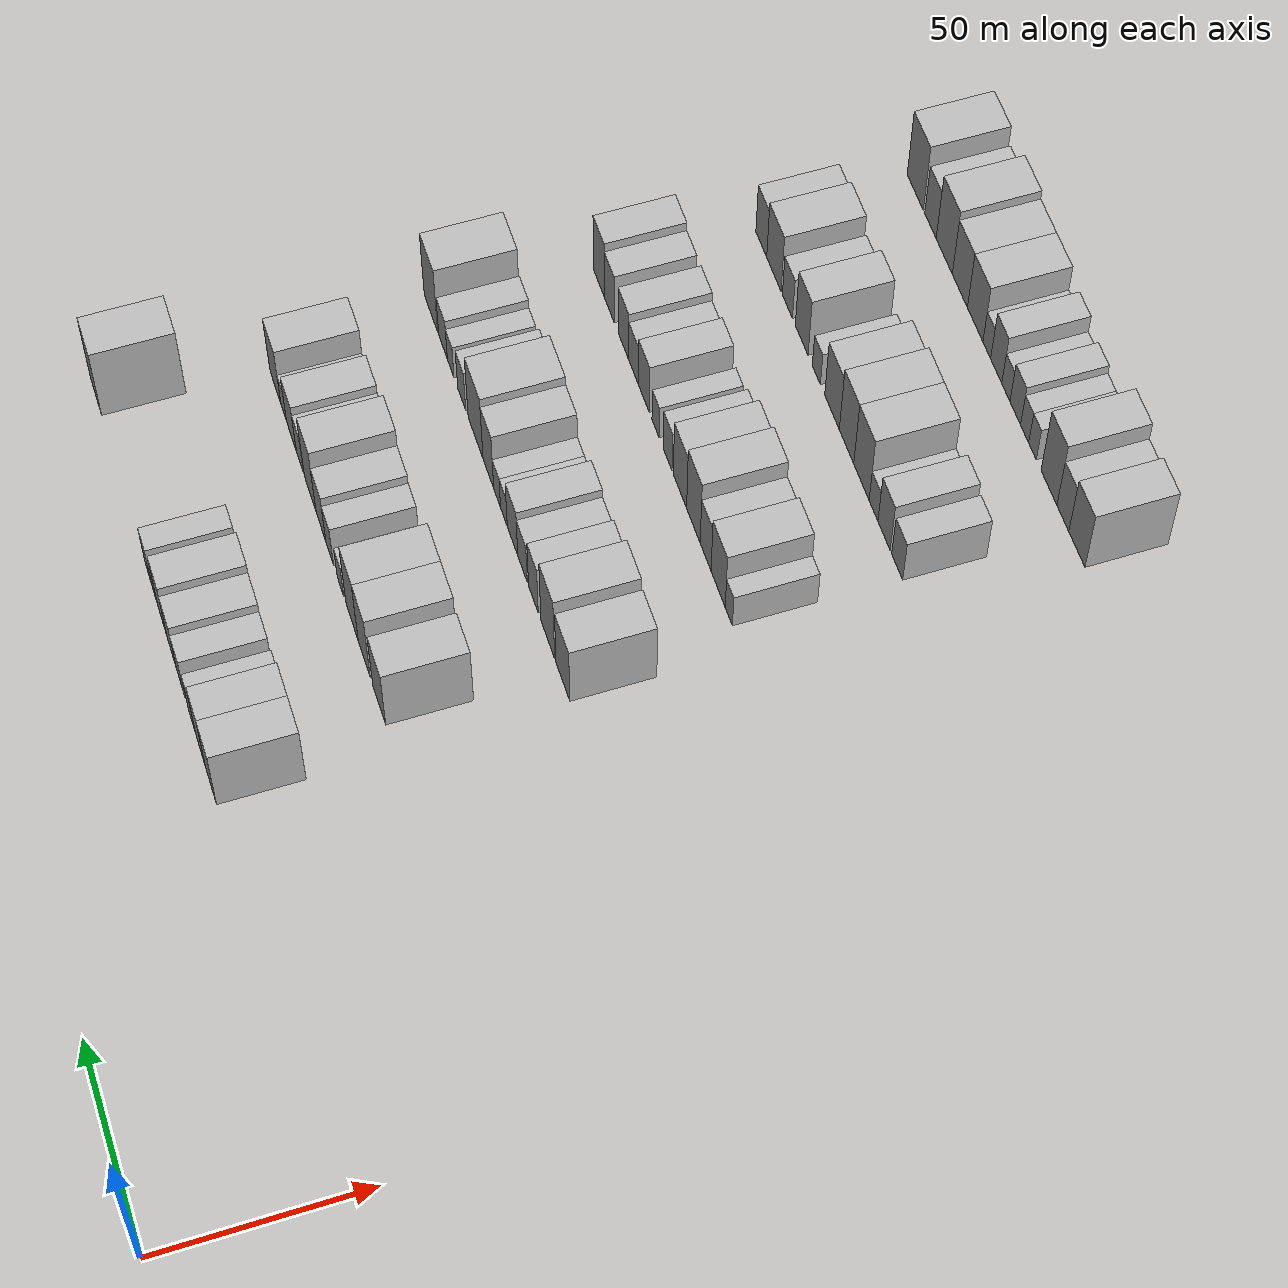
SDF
<sdf version="1.6">
 <world name="default">
  <model name="building_77">
   <static>1</static>
   <pose>50.0000 99.2891 0 0.000000 0.000000 0.000000</pose>
   <link name="link">
    <pose>0 0 10.50 0 0 0</pose>
    <collision name="collision"><geometry><box><size>20.0000 9.4517 21.0000</size></box></geometry></collision>
    <visual name="visual">
     <cast_shadows>0</cast_shadows>
     <geometry><box><size>20.0000 9.4517 21.0000</size></box></geometry>
     <material>
      <script>
       <uri>model://HANNAS_wall/materials/scripts</uri>
       <uri>model://HANNAS_wall/materials/textures</uri>
       <name>vrc/HANNAS_wall</name>
      </script>
     </material>
    </visual>
   </link>
  </model>
  <model name="building_78">
   <static>1</static>
   <pose>50.0000 108.2831 0 0.000000 0.000000 0.000000</pose>
   <link name="link">
    <pose>0 0 10.50 0 0 0</pose>
    <collision name="collision"><geometry><box><size>20.0000 8.5363 21.0000</size></box></geometry></collision>
    <visual name="visual">
     <cast_shadows>0</cast_shadows>
     <geometry><box><size>20.0000 8.5363 21.0000</size></box></geometry>
     <material>
      <script>
       <uri>model://HANNAS_wall/materials/scripts</uri>
       <uri>model://HANNAS_wall/materials/textures</uri>
       <name>vrc/HANNAS_wall</name>
      </script>
     </material>
    </visual>
   </link>
  </model>
  <model name="building_79">
   <static>1</static>
   <pose>50.0000 115.9883 0 0.000000 0.000000 0.000000</pose>
   <link name="link">
    <pose>0 0 7.50 0 0 0</pose>
    <collision name="collision"><geometry><box><size>20.0000 6.8740 15.0000</size></box></geometry></collision>
    <visual name="visual">
     <cast_shadows>0</cast_shadows>
     <geometry><box><size>20.0000 6.8740 15.0000</size></box></geometry>
     <material>
      <script>
       <uri>model://HANNAS_wall/materials/scripts</uri>
       <uri>model://HANNAS_wall/materials/textures</uri>
       <name>vrc/HANNAS_wall</name>
      </script>
     </material>
    </visual>
   </link>
  </model>
  <model name="building_80">
   <static>1</static>
   <pose>50.0000 125.9807 0 0.000000 0.000000 0.000000</pose>
   <link name="link">
    <pose>0 0 7.50 0 0 0</pose>
    <collision name="collision"><geometry><box><size>20.0000 7.1107 15.0000</size></box></geometry></collision>
    <visual name="visual">
     <cast_shadows>0</cast_shadows>
     <geometry><box><size>20.0000 7.1107 15.0000</size></box></geometry>
     <material>
      <script>
       <uri>model://HANNAS_wall/materials/scripts</uri>
       <uri>model://HANNAS_wall/materials/textures</uri>
       <name>vrc/HANNAS_wall</name>
      </script>
     </material>
    </visual>
   </link>
  </model>
  <model name="building_81">
   <static>1</static>
   <pose>50.0000 133.7764 0 0.000000 0.000000 0.000000</pose>
   <link name="link">
    <pose>0 0 9.00 0 0 0</pose>
    <collision name="collision"><geometry><box><size>20.0000 8.4806 18.0000</size></box></geometry></collision>
    <visual name="visual">
     <cast_shadows>0</cast_shadows>
     <geometry><box><size>20.0000 8.4806 18.0000</size></box></geometry>
     <material>
      <script>
       <uri>model://HANNAS_wall/materials/scripts</uri>
       <uri>model://HANNAS_wall/materials/textures</uri>
       <name>vrc/HANNAS_wall</name>
      </script>
     </material>
    </visual>
   </link>
  </model>
  <model name="building_82">
   <static>1</static>
   <pose>50.0000 142.4412 0 0.000000 0.000000 0.000000</pose>
   <link name="link">
    <pose>0 0 10.50 0 0 0</pose>
    <collision name="collision"><geometry><box><size>20.0000 8.8489 21.0000</size></box></geometry></collision>
    <visual name="visual">
     <cast_shadows>0</cast_shadows>
     <geometry><box><size>20.0000 8.8489 21.0000</size></box></geometry>
     <material>
      <script>
       <uri>model://HANNAS_wall/materials/scripts</uri>
       <uri>model://HANNAS_wall/materials/textures</uri>
       <name>vrc/HANNAS_wall</name>
      </script>
     </material>
    </visual>
   </link>
  </model>
  <model name="building_83">
   <static>1</static>
   <pose>50.0000 149.4937 0 0.000000 0.000000 0.000000</pose>
   <link name="link">
    <pose>0 0 6.00 0 0 0</pose>
    <collision name="collision"><geometry><box><size>20.0000 5.2561 12.0000</size></box></geometry></collision>
    <visual name="visual">
     <cast_shadows>0</cast_shadows>
     <geometry><box><size>20.0000 5.2561 12.0000</size></box></geometry>
     <material>
      <script>
       <uri>model://HANNAS_wall/materials/scripts</uri>
       <uri>model://HANNAS_wall/materials/textures</uri>
       <name>vrc/HANNAS_wall</name>
      </script>
     </material>
    </visual>
   </link>
  </model>
  <model name="building_84">
   <static>1</static>
   <pose>50.0000 155.2547 0 0.000000 0.000000 0.000000</pose>
   <link name="link">
    <pose>0 0 7.50 0 0 0</pose>
    <collision name="collision"><geometry><box><size>20.0000 6.2658 15.0000</size></box></geometry></collision>
    <visual name="visual">
     <cast_shadows>0</cast_shadows>
     <geometry><box><size>20.0000 6.2658 15.0000</size></box></geometry>
     <material>
      <script>
       <uri>model://HANNAS_wall/materials/scripts</uri>
       <uri>model://HANNAS_wall/materials/textures</uri>
       <name>vrc/HANNAS_wall</name>
      </script>
     </material>
    </visual>
   </link>
  </model>
  <model name="building_85">
   <static>1</static>
   <pose>50.0000 205.6825 0 0.000000 0.000000 0.000000</pose>
   <link name="link">
    <pose>0 0 12.00 0 0 0</pose>
    <collision name="collision"><geometry><box><size>20.0000 10.8633 24.0000</size></box></geometry></collision>
    <visual name="visual">
     <cast_shadows>0</cast_shadows>
     <geometry><box><size>20.0000 10.8633 24.0000</size></box></geometry>
     <material>
      <script>
       <uri>model://HANNAS_wall/materials/scripts</uri>
       <uri>model://HANNAS_wall/materials/textures</uri>
       <name>vrc/HANNAS_wall</name>
      </script>
     </material>
    </visual>
   </link>
  </model>
  <model name="building_215">
   <static>1</static>
   <pose>90.0000 107.4806 0 0.000000 0.000000 0.000000</pose>
   <link name="link">
    <pose>0 0 10.50 0 0 0</pose>
    <collision name="collision"><geometry><box><size>20.0000 10.4156 21.0000</size></box></geometry></collision>
    <visual name="visual">
     <cast_shadows>0</cast_shadows>
     <geometry><box><size>20.0000 10.4156 21.0000</size></box></geometry>
     <material>
      <script>
       <uri>model://HANNAS_wall/materials/scripts</uri>
       <uri>model://HANNAS_wall/materials/textures</uri>
       <name>vrc/HANNAS_wall</name>
      </script>
     </material>
    </visual>
   </link>
  </model>
  <model name="building_216">
   <static>1</static>
   <pose>90.0000 119.5808 0 0.000000 0.000000 0.000000</pose>
   <link name="link">
    <pose>0 0 12.00 0 0 0</pose>
    <collision name="collision"><geometry><box><size>20.0000 9.7849 24.0000</size></box></geometry></collision>
    <visual name="visual">
     <cast_shadows>0</cast_shadows>
     <geometry><box><size>20.0000 9.7849 24.0000</size></box></geometry>
     <material>
      <script>
       <uri>model://HANNAS_wall/materials/scripts</uri>
       <uri>model://HANNAS_wall/materials/textures</uri>
       <name>vrc/HANNAS_wall</name>
      </script>
     </material>
    </visual>
   </link>
  </model>
  <model name="building_217">
   <static>1</static>
   <pose>90.0000 129.5171 0 0.000000 0.000000 0.000000</pose>
   <link name="link">
    <pose>0 0 12.00 0 0 0</pose>
    <collision name="collision"><geometry><box><size>20.0000 10.0877 24.0000</size></box></geometry></collision>
    <visual name="visual">
     <cast_shadows>0</cast_shadows>
     <geometry><box><size>20.0000 10.0877 24.0000</size></box></geometry>
     <material>
      <script>
       <uri>model://HANNAS_wall/materials/scripts</uri>
       <uri>model://HANNAS_wall/materials/textures</uri>
       <name>vrc/HANNAS_wall</name>
      </script>
     </material>
    </visual>
   </link>
  </model>
  <model name="building_218">
   <static>1</static>
   <pose>90.0000 139.2879 0 0.000000 0.000000 0.000000</pose>
   <link name="link">
    <pose>0 0 6.00 0 0 0</pose>
    <collision name="collision"><geometry><box><size>20.0000 5.4538 12.0000</size></box></geometry></collision>
    <visual name="visual">
     <cast_shadows>0</cast_shadows>
     <geometry><box><size>20.0000 5.4538 12.0000</size></box></geometry>
     <material>
      <script>
       <uri>model://HANNAS_wall/materials/scripts</uri>
       <uri>model://HANNAS_wall/materials/textures</uri>
       <name>vrc/HANNAS_wall</name>
      </script>
     </material>
    </visual>
   </link>
  </model>
  <model name="building_219">
   <static>1</static>
   <pose>90.0000 148.2524 0 0.000000 0.000000 0.000000</pose>
   <link name="link">
    <pose>0 0 7.50 0 0 0</pose>
    <collision name="collision"><geometry><box><size>20.0000 6.4750 15.0000</size></box></geometry></collision>
    <visual name="visual">
     <cast_shadows>0</cast_shadows>
     <geometry><box><size>20.0000 6.4750 15.0000</size></box></geometry>
     <material>
      <script>
       <uri>model://HANNAS_wall/materials/scripts</uri>
       <uri>model://HANNAS_wall/materials/textures</uri>
       <name>vrc/HANNAS_wall</name>
      </script>
     </material>
    </visual>
   </link>
  </model>
  <model name="building_220">
   <static>1</static>
   <pose>90.0000 155.6900 0 0.000000 0.000000 0.000000</pose>
   <link name="link">
    <pose>0 0 9.00 0 0 0</pose>
    <collision name="collision"><geometry><box><size>20.0000 8.4004 18.0000</size></box></geometry></collision>
    <visual name="visual">
     <cast_shadows>0</cast_shadows>
     <geometry><box><size>20.0000 8.4004 18.0000</size></box></geometry>
     <material>
      <script>
       <uri>model://HANNAS_wall/materials/scripts</uri>
       <uri>model://HANNAS_wall/materials/textures</uri>
       <name>vrc/HANNAS_wall</name>
      </script>
     </material>
    </visual>
   </link>
  </model>
  <model name="building_221">
   <static>1</static>
   <pose>90.0000 164.8356 0 0.000000 0.000000 0.000000</pose>
   <link name="link">
    <pose>0 0 12.00 0 0 0</pose>
    <collision name="collision"><geometry><box><size>20.0000 9.8908 24.0000</size></box></geometry></collision>
    <visual name="visual">
     <cast_shadows>0</cast_shadows>
     <geometry><box><size>20.0000 9.8908 24.0000</size></box></geometry>
     <material>
      <script>
       <uri>model://HANNAS_wall/materials/scripts</uri>
       <uri>model://HANNAS_wall/materials/textures</uri>
       <name>vrc/HANNAS_wall</name>
      </script>
     </material>
    </visual>
   </link>
  </model>
  <model name="building_222">
   <static>1</static>
   <pose>90.0000 173.8003 0 0.000000 0.000000 0.000000</pose>
   <link name="link">
    <pose>0 0 7.50 0 0 0</pose>
    <collision name="collision"><geometry><box><size>20.0000 6.0385 15.0000</size></box></geometry></collision>
    <visual name="visual">
     <cast_shadows>0</cast_shadows>
     <geometry><box><size>20.0000 6.0385 15.0000</size></box></geometry>
     <material>
      <script>
       <uri>model://HANNAS_wall/materials/scripts</uri>
       <uri>model://HANNAS_wall/materials/textures</uri>
       <name>vrc/HANNAS_wall</name>
      </script>
     </material>
    </visual>
   </link>
  </model>
  <model name="building_223">
   <static>1</static>
   <pose>90.0000 181.1996 0 0.000000 0.000000 0.000000</pose>
   <link name="link">
    <pose>0 0 9.00 0 0 0</pose>
    <collision name="collision"><geometry><box><size>20.0000 8.7601 18.0000</size></box></geometry></collision>
    <visual name="visual">
     <cast_shadows>0</cast_shadows>
     <geometry><box><size>20.0000 8.7601 18.0000</size></box></geometry>
     <material>
      <script>
       <uri>model://HANNAS_wall/materials/scripts</uri>
       <uri>model://HANNAS_wall/materials/textures</uri>
       <name>vrc/HANNAS_wall</name>
      </script>
     </material>
    </visual>
   </link>
  </model>
  <model name="building_224">
   <static>1</static>
   <pose>90.0000 188.0301 0 0.000000 0.000000 0.000000</pose>
   <link name="link">
    <pose>0 0 6.00 0 0 0</pose>
    <collision name="collision"><geometry><box><size>20.0000 4.9010 12.0000</size></box></geometry></collision>
    <visual name="visual">
     <cast_shadows>0</cast_shadows>
     <geometry><box><size>20.0000 4.9010 12.0000</size></box></geometry>
     <material>
      <script>
       <uri>model://HANNAS_wall/materials/scripts</uri>
       <uri>model://HANNAS_wall/materials/textures</uri>
       <name>vrc/HANNAS_wall</name>
      </script>
     </material>
    </visual>
   </link>
  </model>
  <model name="building_225">
   <static>1</static>
   <pose>90.0000 195.3582 0 0.000000 0.000000 0.000000</pose>
   <link name="link">
    <pose>0 0 10.50 0 0 0</pose>
    <collision name="collision"><geometry><box><size>20.0000 9.7551 21.0000</size></box></geometry></collision>
    <visual name="visual">
     <cast_shadows>0</cast_shadows>
     <geometry><box><size>20.0000 9.7551 21.0000</size></box></geometry>
     <material>
      <script>
       <uri>model://HANNAS_wall/materials/scripts</uri>
       <uri>model://HANNAS_wall/materials/textures</uri>
       <name>vrc/HANNAS_wall</name>
      </script>
     </material>
    </visual>
   </link>
  </model>
  <model name="building_354">
   <static>1</static>
   <pose>130.0000 100.8171 0 0.000000 0.000000 0.000000</pose>
   <link name="link">
    <pose>0 0 10.50 0 0 0</pose>
    <collision name="collision"><geometry><box><size>20.0000 10.2720 21.0000</size></box></geometry></collision>
    <visual name="visual">
     <cast_shadows>0</cast_shadows>
     <geometry><box><size>20.0000 10.2720 21.0000</size></box></geometry>
     <material>
      <script>
       <uri>model://HANNAS_wall/materials/scripts</uri>
       <uri>model://HANNAS_wall/materials/textures</uri>
       <name>vrc/HANNAS_wall</name>
      </script>
     </material>
    </visual>
   </link>
  </model>
  <model name="building_355">
   <static>1</static>
   <pose>130.0000 112.1049 0 0.000000 0.000000 0.000000</pose>
   <link name="link">
    <pose>0 0 12.00 0 0 0</pose>
    <collision name="collision"><geometry><box><size>20.0000 10.3036 24.0000</size></box></geometry></collision>
    <visual name="visual">
     <cast_shadows>0</cast_shadows>
     <geometry><box><size>20.0000 10.3036 24.0000</size></box></geometry>
     <material>
      <script>
       <uri>model://HANNAS_wall/materials/scripts</uri>
       <uri>model://HANNAS_wall/materials/textures</uri>
       <name>vrc/HANNAS_wall</name>
      </script>
     </material>
    </visual>
   </link>
  </model>
  <model name="building_356">
   <static>1</static>
   <pose>130.0000 122.9356 0 0.000000 0.000000 0.000000</pose>
   <link name="link">
    <pose>0 0 9.00 0 0 0</pose>
    <collision name="collision"><geometry><box><size>20.0000 7.3577 18.0000</size></box></geometry></collision>
    <visual name="visual">
     <cast_shadows>0</cast_shadows>
     <geometry><box><size>20.0000 7.3577 18.0000</size></box></geometry>
     <material>
      <script>
       <uri>model://HANNAS_wall/materials/scripts</uri>
       <uri>model://HANNAS_wall/materials/textures</uri>
       <name>vrc/HANNAS_wall</name>
      </script>
     </material>
    </visual>
   </link>
  </model>
  <model name="building_357">
   <static>1</static>
   <pose>130.0000 131.2360 0 0.000000 0.000000 0.000000</pose>
   <link name="link">
    <pose>0 0 7.50 0 0 0</pose>
    <collision name="collision"><geometry><box><size>20.0000 7.2430 15.0000</size></box></geometry></collision>
    <visual name="visual">
     <cast_shadows>0</cast_shadows>
     <geometry><box><size>20.0000 7.2430 15.0000</size></box></geometry>
     <material>
      <script>
       <uri>model://HANNAS_wall/materials/scripts</uri>
       <uri>model://HANNAS_wall/materials/textures</uri>
       <name>vrc/HANNAS_wall</name>
      </script>
     </material>
    </visual>
   </link>
  </model>
  <model name="building_358">
   <static>1</static>
   <pose>130.0000 138.9309 0 0.000000 0.000000 0.000000</pose>
   <link name="link">
    <pose>0 0 9.00 0 0 0</pose>
    <collision name="collision"><geometry><box><size>20.0000 8.1469 18.0000</size></box></geometry></collision>
    <visual name="visual">
     <cast_shadows>0</cast_shadows>
     <geometry><box><size>20.0000 8.1469 18.0000</size></box></geometry>
     <material>
      <script>
       <uri>model://HANNAS_wall/materials/scripts</uri>
       <uri>model://HANNAS_wall/materials/textures</uri>
       <name>vrc/HANNAS_wall</name>
      </script>
     </material>
    </visual>
   </link>
  </model>
  <model name="building_359">
   <static>1</static>
   <pose>130.0000 145.6430 0 0.000000 0.000000 0.000000</pose>
   <link name="link">
    <pose>0 0 6.00 0 0 0</pose>
    <collision name="collision"><geometry><box><size>20.0000 5.2772 12.0000</size></box></geometry></collision>
    <visual name="visual">
     <cast_shadows>0</cast_shadows>
     <geometry><box><size>20.0000 5.2772 12.0000</size></box></geometry>
     <material>
      <script>
       <uri>model://HANNAS_wall/materials/scripts</uri>
       <uri>model://HANNAS_wall/materials/textures</uri>
       <name>vrc/HANNAS_wall</name>
      </script>
     </material>
    </visual>
   </link>
  </model>
  <model name="building_360">
   <static>1</static>
   <pose>130.0000 150.9577 0 0.000000 0.000000 0.000000</pose>
   <link name="link">
    <pose>0 0 6.00 0 0 0</pose>
    <collision name="collision"><geometry><box><size>20.0000 5.3523 12.0000</size></box></geometry></collision>
    <visual name="visual">
     <cast_shadows>0</cast_shadows>
     <geometry><box><size>20.0000 5.3523 12.0000</size></box></geometry>
     <material>
      <script>
       <uri>model://HANNAS_wall/materials/scripts</uri>
       <uri>model://HANNAS_wall/materials/textures</uri>
       <name>vrc/HANNAS_wall</name>
      </script>
     </material>
    </visual>
   </link>
  </model>
  <model name="building_361">
   <static>1</static>
   <pose>130.0000 157.8746 0 0.000000 0.000000 0.000000</pose>
   <link name="link">
    <pose>0 0 10.50 0 0 0</pose>
    <collision name="collision"><geometry><box><size>20.0000 8.4815 21.0000</size></box></geometry></collision>
    <visual name="visual">
     <cast_shadows>0</cast_shadows>
     <geometry><box><size>20.0000 8.4815 21.0000</size></box></geometry>
     <material>
      <script>
       <uri>model://HANNAS_wall/materials/scripts</uri>
       <uri>model://HANNAS_wall/materials/textures</uri>
       <name>vrc/HANNAS_wall</name>
      </script>
     </material>
    </visual>
   </link>
  </model>
  <model name="building_362">
   <static>1</static>
   <pose>130.0000 168.0741 0 0.000000 0.000000 0.000000</pose>
   <link name="link">
    <pose>0 0 12.00 0 0 0</pose>
    <collision name="collision"><geometry><box><size>20.0000 11.9174 24.0000</size></box></geometry></collision>
    <visual name="visual">
     <cast_shadows>0</cast_shadows>
     <geometry><box><size>20.0000 11.9174 24.0000</size></box></geometry>
     <material>
      <script>
       <uri>model://HANNAS_wall/materials/scripts</uri>
       <uri>model://HANNAS_wall/materials/textures</uri>
       <name>vrc/HANNAS_wall</name>
      </script>
     </material>
    </visual>
   </link>
  </model>
  <model name="building_363">
   <static>1</static>
   <pose>130.0000 179.2942 0 0.000000 0.000000 0.000000</pose>
   <link name="link">
    <pose>0 0 7.50 0 0 0</pose>
    <collision name="collision"><geometry><box><size>20.0000 6.5229 15.0000</size></box></geometry></collision>
    <visual name="visual">
     <cast_shadows>0</cast_shadows>
     <geometry><box><size>20.0000 6.5229 15.0000</size></box></geometry>
     <material>
      <script>
       <uri>model://HANNAS_wall/materials/scripts</uri>
       <uri>model://HANNAS_wall/materials/textures</uri>
       <name>vrc/HANNAS_wall</name>
      </script>
     </material>
    </visual>
   </link>
  </model>
  <model name="building_364">
   <static>1</static>
   <pose>130.0000 188.2662 0 0.000000 0.000000 0.000000</pose>
   <link name="link">
    <pose>0 0 6.00 0 0 0</pose>
    <collision name="collision"><geometry><box><size>20.0000 5.4210 12.0000</size></box></geometry></collision>
    <visual name="visual">
     <cast_shadows>0</cast_shadows>
     <geometry><box><size>20.0000 5.4210 12.0000</size></box></geometry>
     <material>
      <script>
       <uri>model://HANNAS_wall/materials/scripts</uri>
       <uri>model://HANNAS_wall/materials/textures</uri>
       <name>vrc/HANNAS_wall</name>
      </script>
     </material>
    </visual>
   </link>
  </model>
  <model name="building_365">
   <static>1</static>
   <pose>130.0000 194.5309 0 0.000000 0.000000 0.000000</pose>
   <link name="link">
    <pose>0 0 7.50 0 0 0</pose>
    <collision name="collision"><geometry><box><size>20.0000 7.1086 15.0000</size></box></geometry></collision>
    <visual name="visual">
     <cast_shadows>0</cast_shadows>
     <geometry><box><size>20.0000 7.1086 15.0000</size></box></geometry>
     <material>
      <script>
       <uri>model://HANNAS_wall/materials/scripts</uri>
       <uri>model://HANNAS_wall/materials/textures</uri>
       <name>vrc/HANNAS_wall</name>
      </script>
     </material>
    </visual>
   </link>
  </model>
  <model name="building_366">
   <static>1</static>
   <pose>130.0000 204.6594 0 0.000000 0.000000 0.000000</pose>
   <link name="link">
    <pose>0 0 12.00 0 0 0</pose>
    <collision name="collision"><geometry><box><size>20.0000 11.1484 24.0000</size></box></geometry></collision>
    <visual name="visual">
     <cast_shadows>0</cast_shadows>
     <geometry><box><size>20.0000 11.1484 24.0000</size></box></geometry>
     <material>
      <script>
       <uri>model://HANNAS_wall/materials/scripts</uri>
       <uri>model://HANNAS_wall/materials/textures</uri>
       <name>vrc/HANNAS_wall</name>
      </script>
     </material>
    </visual>
   </link>
  </model>
  <model name="building_496">
   <static>1</static>
   <pose>170.0000 105.4854 0 0.000000 0.000000 0.000000</pose>
   <link name="link">
    <pose>0 0 6.00 0 0 0</pose>
    <collision name="collision"><geometry><box><size>20.0000 5.0078 12.0000</size></box></geometry></collision>
    <visual name="visual">
     <cast_shadows>0</cast_shadows>
     <geometry><box><size>20.0000 5.0078 12.0000</size></box></geometry>
     <material>
      <script>
       <uri>model://HANNAS_wall/materials/scripts</uri>
       <uri>model://HANNAS_wall/materials/textures</uri>
       <name>vrc/HANNAS_wall</name>
      </script>
     </material>
    </visual>
   </link>
  </model>
  <model name="building_497">
   <static>1</static>
   <pose>170.0000 112.9611 0 0.000000 0.000000 0.000000</pose>
   <link name="link">
    <pose>0 0 10.50 0 0 0</pose>
    <collision name="collision"><geometry><box><size>20.0000 9.9436 21.0000</size></box></geometry></collision>
    <visual name="visual">
     <cast_shadows>0</cast_shadows>
     <geometry><box><size>20.0000 9.9436 21.0000</size></box></geometry>
     <material>
      <script>
       <uri>model://HANNAS_wall/materials/scripts</uri>
       <uri>model://HANNAS_wall/materials/textures</uri>
       <name>vrc/HANNAS_wall</name>
      </script>
     </material>
    </visual>
   </link>
  </model>
  <model name="building_498">
   <static>1</static>
   <pose>170.0000 121.7781 0 0.000000 0.000000 0.000000</pose>
   <link name="link">
    <pose>0 0 9.00 0 0 0</pose>
    <collision name="collision"><geometry><box><size>20.0000 7.6902 18.0000</size></box></geometry></collision>
    <visual name="visual">
     <cast_shadows>0</cast_shadows>
     <geometry><box><size>20.0000 7.6902 18.0000</size></box></geometry>
     <material>
      <script>
       <uri>model://HANNAS_wall/materials/scripts</uri>
       <uri>model://HANNAS_wall/materials/textures</uri>
       <name>vrc/HANNAS_wall</name>
      </script>
     </material>
    </visual>
   </link>
  </model>
  <model name="building_499">
   <static>1</static>
   <pose>170.0000 130.4666 0 0.000000 0.000000 0.000000</pose>
   <link name="link">
    <pose>0 0 12.00 0 0 0</pose>
    <collision name="collision"><geometry><box><size>20.0000 9.6869 24.0000</size></box></geometry></collision>
    <visual name="visual">
     <cast_shadows>0</cast_shadows>
     <geometry><box><size>20.0000 9.6869 24.0000</size></box></geometry>
     <material>
      <script>
       <uri>model://HANNAS_wall/materials/scripts</uri>
       <uri>model://HANNAS_wall/materials/textures</uri>
       <name>vrc/HANNAS_wall</name>
      </script>
     </material>
    </visual>
   </link>
  </model>
  <model name="building_500">
   <static>1</static>
   <pose>170.0000 140.1301 0 0.000000 0.000000 0.000000</pose>
   <link name="link">
    <pose>0 0 10.50 0 0 0</pose>
    <collision name="collision"><geometry><box><size>20.0000 9.6401 21.0000</size></box></geometry></collision>
    <visual name="visual">
     <cast_shadows>0</cast_shadows>
     <geometry><box><size>20.0000 9.6401 21.0000</size></box></geometry>
     <material>
      <script>
       <uri>model://HANNAS_wall/materials/scripts</uri>
       <uri>model://HANNAS_wall/materials/textures</uri>
       <name>vrc/HANNAS_wall</name>
      </script>
     </material>
    </visual>
   </link>
  </model>
  <model name="building_501">
   <static>1</static>
   <pose>170.0000 149.1503 0 0.000000 0.000000 0.000000</pose>
   <link name="link">
    <pose>0 0 7.50 0 0 0</pose>
    <collision name="collision"><geometry><box><size>20.0000 6.4003 15.0000</size></box></geometry></collision>
    <visual name="visual">
     <cast_shadows>0</cast_shadows>
     <geometry><box><size>20.0000 6.4003 15.0000</size></box></geometry>
     <material>
      <script>
       <uri>model://HANNAS_wall/materials/scripts</uri>
       <uri>model://HANNAS_wall/materials/textures</uri>
       <name>vrc/HANNAS_wall</name>
      </script>
     </material>
    </visual>
   </link>
  </model>
  <model name="building_502">
   <static>1</static>
   <pose>170.0000 157.9969 0 0.000000 0.000000 0.000000</pose>
   <link name="link">
    <pose>0 0 6.00 0 0 0</pose>
    <collision name="collision"><geometry><box><size>20.0000 5.2929 12.0000</size></box></geometry></collision>
    <visual name="visual">
     <cast_shadows>0</cast_shadows>
     <geometry><box><size>20.0000 5.2929 12.0000</size></box></geometry>
     <material>
      <script>
       <uri>model://HANNAS_wall/materials/scripts</uri>
       <uri>model://HANNAS_wall/materials/textures</uri>
       <name>vrc/HANNAS_wall</name>
      </script>
     </material>
    </visual>
   </link>
  </model>
  <model name="building_503">
   <static>1</static>
   <pose>170.0000 166.7056 0 0.000000 0.000000 0.000000</pose>
   <link name="link">
    <pose>0 0 9.00 0 0 0</pose>
    <collision name="collision"><geometry><box><size>20.0000 8.1246 18.0000</size></box></geometry></collision>
    <visual name="visual">
     <cast_shadows>0</cast_shadows>
     <geometry><box><size>20.0000 8.1246 18.0000</size></box></geometry>
     <material>
      <script>
       <uri>model://HANNAS_wall/materials/scripts</uri>
       <uri>model://HANNAS_wall/materials/textures</uri>
       <name>vrc/HANNAS_wall</name>
      </script>
     </material>
    </visual>
   </link>
  </model>
  <model name="building_504">
   <static>1</static>
   <pose>170.0000 174.3949 0 0.000000 0.000000 0.000000</pose>
   <link name="link">
    <pose>0 0 7.50 0 0 0</pose>
    <collision name="collision"><geometry><box><size>20.0000 7.2540 15.0000</size></box></geometry></collision>
    <visual name="visual">
     <cast_shadows>0</cast_shadows>
     <geometry><box><size>20.0000 7.2540 15.0000</size></box></geometry>
     <material>
      <script>
       <uri>model://HANNAS_wall/materials/scripts</uri>
       <uri>model://HANNAS_wall/materials/textures</uri>
       <name>vrc/HANNAS_wall</name>
      </script>
     </material>
    </visual>
   </link>
  </model>
  <model name="building_505">
   <static>1</static>
   <pose>170.0000 182.0695 0 0.000000 0.000000 0.000000</pose>
   <link name="link">
    <pose>0 0 9.00 0 0 0</pose>
    <collision name="collision"><geometry><box><size>20.0000 8.0953 18.0000</size></box></geometry></collision>
    <visual name="visual">
     <cast_shadows>0</cast_shadows>
     <geometry><box><size>20.0000 8.0953 18.0000</size></box></geometry>
     <material>
      <script>
       <uri>model://HANNAS_wall/materials/scripts</uri>
       <uri>model://HANNAS_wall/materials/textures</uri>
       <name>vrc/HANNAS_wall</name>
      </script>
     </material>
    </visual>
   </link>
  </model>
  <model name="building_506">
   <static>1</static>
   <pose>170.0000 192.8600 0 0.000000 0.000000 0.000000</pose>
   <link name="link">
    <pose>0 0 9.00 0 0 0</pose>
    <collision name="collision"><geometry><box><size>20.0000 7.4857 18.0000</size></box></geometry></collision>
    <visual name="visual">
     <cast_shadows>0</cast_shadows>
     <geometry><box><size>20.0000 7.4857 18.0000</size></box></geometry>
     <material>
      <script>
       <uri>model://HANNAS_wall/materials/scripts</uri>
       <uri>model://HANNAS_wall/materials/textures</uri>
       <name>vrc/HANNAS_wall</name>
      </script>
     </material>
    </visual>
   </link>
  </model>
  <model name="building_507">
   <static>1</static>
   <pose>170.0000 200.8654 0 0.000000 0.000000 0.000000</pose>
   <link name="link">
    <pose>0 0 10.50 0 0 0</pose>
    <collision name="collision"><geometry><box><size>20.0000 8.5252 21.0000</size></box></geometry></collision>
    <visual name="visual">
     <cast_shadows>0</cast_shadows>
     <geometry><box><size>20.0000 8.5252 21.0000</size></box></geometry>
     <material>
      <script>
       <uri>model://HANNAS_wall/materials/scripts</uri>
       <uri>model://HANNAS_wall/materials/textures</uri>
       <name>vrc/HANNAS_wall</name>
      </script>
     </material>
    </visual>
   </link>
  </model>
  <model name="building_635">
   <static>1</static>
   <pose>210.0000 106.1833 0 0.000000 0.000000 0.000000</pose>
   <link name="link">
    <pose>0 0 7.50 0 0 0</pose>
    <collision name="collision"><geometry><box><size>20.0000 7.1761 15.0000</size></box></geometry></collision>
    <visual name="visual">
     <cast_shadows>0</cast_shadows>
     <geometry><box><size>20.0000 7.1761 15.0000</size></box></geometry>
     <material>
      <script>
       <uri>model://HANNAS_wall/materials/scripts</uri>
       <uri>model://HANNAS_wall/materials/textures</uri>
       <name>vrc/HANNAS_wall</name>
      </script>
     </material>
    </visual>
   </link>
  </model>
  <model name="building_636">
   <static>1</static>
   <pose>210.0000 114.8351 0 0.000000 0.000000 0.000000</pose>
   <link name="link">
    <pose>0 0 9.00 0 0 0</pose>
    <collision name="collision"><geometry><box><size>20.0000 8.1275 18.0000</size></box></geometry></collision>
    <visual name="visual">
     <cast_shadows>0</cast_shadows>
     <geometry><box><size>20.0000 8.1275 18.0000</size></box></geometry>
     <material>
      <script>
       <uri>model://HANNAS_wall/materials/scripts</uri>
       <uri>model://HANNAS_wall/materials/textures</uri>
       <name>vrc/HANNAS_wall</name>
      </script>
     </material>
    </visual>
   </link>
  </model>
  <model name="building_637">
   <static>1</static>
   <pose>210.0000 121.8293 0 0.000000 0.000000 0.000000</pose>
   <link name="link">
    <pose>0 0 6.00 0 0 0</pose>
    <collision name="collision"><geometry><box><size>20.0000 5.8608 12.0000</size></box></geometry></collision>
    <visual name="visual">
     <cast_shadows>0</cast_shadows>
     <geometry><box><size>20.0000 5.8608 12.0000</size></box></geometry>
     <material>
      <script>
       <uri>model://HANNAS_wall/materials/scripts</uri>
       <uri>model://HANNAS_wall/materials/textures</uri>
       <name>vrc/HANNAS_wall</name>
      </script>
     </material>
    </visual>
   </link>
  </model>
  <model name="building_638">
   <static>1</static>
   <pose>210.0000 129.9146 0 0.000000 0.000000 0.000000</pose>
   <link name="link">
    <pose>0 0 12.00 0 0 0</pose>
    <collision name="collision"><geometry><box><size>20.0000 10.3099 24.0000</size></box></geometry></collision>
    <visual name="visual">
     <cast_shadows>0</cast_shadows>
     <geometry><box><size>20.0000 10.3099 24.0000</size></box></geometry>
     <material>
      <script>
       <uri>model://HANNAS_wall/materials/scripts</uri>
       <uri>model://HANNAS_wall/materials/textures</uri>
       <name>vrc/HANNAS_wall</name>
      </script>
     </material>
    </visual>
   </link>
  </model>
  <model name="building_639">
   <static>1</static>
   <pose>210.0000 139.9837 0 0.000000 0.000000 0.000000</pose>
   <link name="link">
    <pose>0 0 12.00 0 0 0</pose>
    <collision name="collision"><geometry><box><size>20.0000 9.8283 24.0000</size></box></geometry></collision>
    <visual name="visual">
     <cast_shadows>0</cast_shadows>
     <geometry><box><size>20.0000 9.8283 24.0000</size></box></geometry>
     <material>
      <script>
       <uri>model://HANNAS_wall/materials/scripts</uri>
       <uri>model://HANNAS_wall/materials/textures</uri>
       <name>vrc/HANNAS_wall</name>
      </script>
     </material>
    </visual>
   </link>
  </model>
  <model name="building_640">
   <static>1</static>
   <pose>210.0000 149.9219 0 0.000000 0.000000 0.000000</pose>
   <link name="link">
    <pose>0 0 10.50 0 0 0</pose>
    <collision name="collision"><geometry><box><size>20.0000 10.0479 21.0000</size></box></geometry></collision>
    <visual name="visual">
     <cast_shadows>0</cast_shadows>
     <geometry><box><size>20.0000 10.0479 21.0000</size></box></geometry>
     <material>
      <script>
       <uri>model://HANNAS_wall/materials/scripts</uri>
       <uri>model://HANNAS_wall/materials/textures</uri>
       <name>vrc/HANNAS_wall</name>
      </script>
     </material>
    </visual>
   </link>
  </model>
  <model name="building_641">
   <static>1</static>
   <pose>210.0000 160.7647 0 0.000000 0.000000 0.000000</pose>
   <link name="link">
    <pose>0 0 6.00 0 0 0</pose>
    <collision name="collision"><geometry><box><size>20.0000 5.6377 12.0000</size></box></geometry></collision>
    <visual name="visual">
     <cast_shadows>0</cast_shadows>
     <geometry><box><size>20.0000 5.6377 12.0000</size></box></geometry>
     <material>
      <script>
       <uri>model://HANNAS_wall/materials/scripts</uri>
       <uri>model://HANNAS_wall/materials/textures</uri>
       <name>vrc/HANNAS_wall</name>
      </script>
     </material>
    </visual>
   </link>
  </model>
  <model name="building_642">
   <static>1</static>
   <pose>210.0000 171.0822 0 0.000000 0.000000 0.000000</pose>
   <link name="link">
    <pose>0 0 10.50 0 0 0</pose>
    <collision name="collision"><geometry><box><size>20.0000 8.9974 21.0000</size></box></geometry></collision>
    <visual name="visual">
     <cast_shadows>0</cast_shadows>
     <geometry><box><size>20.0000 8.9974 21.0000</size></box></geometry>
     <material>
      <script>
       <uri>model://HANNAS_wall/materials/scripts</uri>
       <uri>model://HANNAS_wall/materials/textures</uri>
       <name>vrc/HANNAS_wall</name>
      </script>
     </material>
    </visual>
   </link>
  </model>
  <model name="building_643">
   <static>1</static>
   <pose>210.0000 181.1688 0 0.000000 0.000000 0.000000</pose>
   <link name="link">
    <pose>0 0 7.50 0 0 0</pose>
    <collision name="collision"><geometry><box><size>20.0000 7.1759 15.0000</size></box></geometry></collision>
    <visual name="visual">
     <cast_shadows>0</cast_shadows>
     <geometry><box><size>20.0000 7.1759 15.0000</size></box></geometry>
     <material>
      <script>
       <uri>model://HANNAS_wall/materials/scripts</uri>
       <uri>model://HANNAS_wall/materials/textures</uri>
       <name>vrc/HANNAS_wall</name>
      </script>
     </material>
    </visual>
   </link>
  </model>
  <model name="building_644">
   <static>1</static>
   <pose>210.0000 190.9317 0 0.000000 0.000000 0.000000</pose>
   <link name="link">
    <pose>0 0 10.50 0 0 0</pose>
    <collision name="collision"><geometry><box><size>20.0000 10.3499 21.0000</size></box></geometry></collision>
    <visual name="visual">
     <cast_shadows>0</cast_shadows>
     <geometry><box><size>20.0000 10.3499 21.0000</size></box></geometry>
     <material>
      <script>
       <uri>model://HANNAS_wall/materials/scripts</uri>
       <uri>model://HANNAS_wall/materials/textures</uri>
       <name>vrc/HANNAS_wall</name>
      </script>
     </material>
    </visual>
   </link>
  </model>
  <model name="building_645">
   <static>1</static>
   <pose>210.0000 200.0481 0 0.000000 0.000000 0.000000</pose>
   <link name="link">
    <pose>0 0 9.00 0 0 0</pose>
    <collision name="collision"><geometry><box><size>20.0000 7.8828 18.0000</size></box></geometry></collision>
    <visual name="visual">
     <cast_shadows>0</cast_shadows>
     <geometry><box><size>20.0000 7.8828 18.0000</size></box></geometry>
     <material>
      <script>
       <uri>model://HANNAS_wall/materials/scripts</uri>
       <uri>model://HANNAS_wall/materials/textures</uri>
       <name>vrc/HANNAS_wall</name>
      </script>
     </material>
    </visual>
   </link>
  </model>
  <model name="building_776">
   <static>1</static>
   <pose>250.0000 98.2481 0 0.000000 0.000000 0.000000</pose>
   <link name="link">
    <pose>0 0 10.50 0 0 0</pose>
    <collision name="collision"><geometry><box><size>20.0000 9.9105 21.0000</size></box></geometry></collision>
    <visual name="visual">
     <cast_shadows>0</cast_shadows>
     <geometry><box><size>20.0000 9.9105 21.0000</size></box></geometry>
     <material>
      <script>
       <uri>model://HANNAS_wall/materials/scripts</uri>
       <uri>model://HANNAS_wall/materials/textures</uri>
       <name>vrc/HANNAS_wall</name>
      </script>
     </material>
    </visual>
   </link>
  </model>
  <model name="building_777">
   <static>1</static>
   <pose>250.0000 106.8686 0 0.000000 0.000000 0.000000</pose>
   <link name="link">
    <pose>0 0 9.00 0 0 0</pose>
    <collision name="collision"><geometry><box><size>20.0000 7.3304 18.0000</size></box></geometry></collision>
    <visual name="visual">
     <cast_shadows>0</cast_shadows>
     <geometry><box><size>20.0000 7.3304 18.0000</size></box></geometry>
     <material>
      <script>
       <uri>model://HANNAS_wall/materials/scripts</uri>
       <uri>model://HANNAS_wall/materials/textures</uri>
       <name>vrc/HANNAS_wall</name>
      </script>
     </material>
    </visual>
   </link>
  </model>
  <model name="building_778">
   <static>1</static>
   <pose>250.0000 115.4871 0 0.000000 0.000000 0.000000</pose>
   <link name="link">
    <pose>0 0 12.00 0 0 0</pose>
    <collision name="collision"><geometry><box><size>20.0000 9.9066 24.0000</size></box></geometry></collision>
    <visual name="visual">
     <cast_shadows>0</cast_shadows>
     <geometry><box><size>20.0000 9.9066 24.0000</size></box></geometry>
     <material>
      <script>
       <uri>model://HANNAS_wall/materials/scripts</uri>
       <uri>model://HANNAS_wall/materials/textures</uri>
       <name>vrc/HANNAS_wall</name>
      </script>
     </material>
    </visual>
   </link>
  </model>
  <model name="building_779">
   <static>1</static>
   <pose>250.0000 125.8712 0 0.000000 0.000000 0.000000</pose>
   <link name="link">
    <pose>0 0 6.00 0 0 0</pose>
    <collision name="collision"><geometry><box><size>20.0000 4.8614 12.0000</size></box></geometry></collision>
    <visual name="visual">
     <cast_shadows>0</cast_shadows>
     <geometry><box><size>20.0000 4.8614 12.0000</size></box></geometry>
     <material>
      <script>
       <uri>model://HANNAS_wall/materials/scripts</uri>
       <uri>model://HANNAS_wall/materials/textures</uri>
       <name>vrc/HANNAS_wall</name>
      </script>
     </material>
    </visual>
   </link>
  </model>
  <model name="building_780">
   <static>1</static>
   <pose>250.0000 130.8778 0 0.000000 0.000000 0.000000</pose>
   <link name="link">
    <pose>0 0 6.00 0 0 0</pose>
    <collision name="collision"><geometry><box><size>20.0000 5.1519 12.0000</size></box></geometry></collision>
    <visual name="visual">
     <cast_shadows>0</cast_shadows>
     <geometry><box><size>20.0000 5.1519 12.0000</size></box></geometry>
     <material>
      <script>
       <uri>model://HANNAS_wall/materials/scripts</uri>
       <uri>model://HANNAS_wall/materials/textures</uri>
       <name>vrc/HANNAS_wall</name>
      </script>
     </material>
    </visual>
   </link>
  </model>
  <model name="building_781">
   <static>1</static>
   <pose>250.0000 136.8294 0 0.000000 0.000000 0.000000</pose>
   <link name="link">
    <pose>0 0 7.50 0 0 0</pose>
    <collision name="collision"><geometry><box><size>20.0000 6.7513 15.0000</size></box></geometry></collision>
    <visual name="visual">
     <cast_shadows>0</cast_shadows>
     <geometry><box><size>20.0000 6.7513 15.0000</size></box></geometry>
     <material>
      <script>
       <uri>model://HANNAS_wall/materials/scripts</uri>
       <uri>model://HANNAS_wall/materials/textures</uri>
       <name>vrc/HANNAS_wall</name>
      </script>
     </material>
    </visual>
   </link>
  </model>
  <model name="building_782">
   <static>1</static>
   <pose>250.0000 142.8670 0 0.000000 0.000000 0.000000</pose>
   <link name="link">
    <pose>0 0 6.00 0 0 0</pose>
    <collision name="collision"><geometry><box><size>20.0000 5.3238 12.0000</size></box></geometry></collision>
    <visual name="visual">
     <cast_shadows>0</cast_shadows>
     <geometry><box><size>20.0000 5.3238 12.0000</size></box></geometry>
     <material>
      <script>
       <uri>model://HANNAS_wall/materials/scripts</uri>
       <uri>model://HANNAS_wall/materials/textures</uri>
       <name>vrc/HANNAS_wall</name>
      </script>
     </material>
    </visual>
   </link>
  </model>
  <model name="building_783">
   <static>1</static>
   <pose>250.0000 149.1510 0 0.000000 0.000000 0.000000</pose>
   <link name="link">
    <pose>0 0 9.00 0 0 0</pose>
    <collision name="collision"><geometry><box><size>20.0000 7.2443 18.0000</size></box></geometry></collision>
    <visual name="visual">
     <cast_shadows>0</cast_shadows>
     <geometry><box><size>20.0000 7.2443 18.0000</size></box></geometry>
     <material>
      <script>
       <uri>model://HANNAS_wall/materials/scripts</uri>
       <uri>model://HANNAS_wall/materials/textures</uri>
       <name>vrc/HANNAS_wall</name>
      </script>
     </material>
    </visual>
   </link>
  </model>
  <model name="building_784">
   <static>1</static>
   <pose>250.0000 155.2841 0 0.000000 0.000000 0.000000</pose>
   <link name="link">
    <pose>0 0 6.00 0 0 0</pose>
    <collision name="collision"><geometry><box><size>20.0000 5.0217 12.0000</size></box></geometry></collision>
    <visual name="visual">
     <cast_shadows>0</cast_shadows>
     <geometry><box><size>20.0000 5.0217 12.0000</size></box></geometry>
     <material>
      <script>
       <uri>model://HANNAS_wall/materials/scripts</uri>
       <uri>model://HANNAS_wall/materials/textures</uri>
       <name>vrc/HANNAS_wall</name>
      </script>
     </material>
    </visual>
   </link>
  </model>
  <model name="building_785">
   <static>1</static>
   <pose>250.0000 162.9230 0 0.000000 0.000000 0.000000</pose>
   <link name="link">
    <pose>0 0 10.50 0 0 0</pose>
    <collision name="collision"><geometry><box><size>20.0000 10.2561 21.0000</size></box></geometry></collision>
    <visual name="visual">
     <cast_shadows>0</cast_shadows>
     <geometry><box><size>20.0000 10.2561 21.0000</size></box></geometry>
     <material>
      <script>
       <uri>model://HANNAS_wall/materials/scripts</uri>
       <uri>model://HANNAS_wall/materials/textures</uri>
       <name>vrc/HANNAS_wall</name>
      </script>
     </material>
    </visual>
   </link>
  </model>
  <model name="building_786">
   <static>1</static>
   <pose>250.0000 173.0878 0 0.000000 0.000000 0.000000</pose>
   <link name="link">
    <pose>0 0 10.50 0 0 0</pose>
    <collision name="collision"><geometry><box><size>20.0000 10.0736 21.0000</size></box></geometry></collision>
    <visual name="visual">
     <cast_shadows>0</cast_shadows>
     <geometry><box><size>20.0000 10.0736 21.0000</size></box></geometry>
     <material>
      <script>
       <uri>model://HANNAS_wall/materials/scripts</uri>
       <uri>model://HANNAS_wall/materials/textures</uri>
       <name>vrc/HANNAS_wall</name>
      </script>
     </material>
    </visual>
   </link>
  </model>
  <model name="building_787">
   <static>1</static>
   <pose>250.0000 183.5859 0 0.000000 0.000000 0.000000</pose>
   <link name="link">
    <pose>0 0 12.00 0 0 0</pose>
    <collision name="collision"><geometry><box><size>20.0000 10.9225 24.0000</size></box></geometry></collision>
    <visual name="visual">
     <cast_shadows>0</cast_shadows>
     <geometry><box><size>20.0000 10.9225 24.0000</size></box></geometry>
     <material>
      <script>
       <uri>model://HANNAS_wall/materials/scripts</uri>
       <uri>model://HANNAS_wall/materials/textures</uri>
       <name>vrc/HANNAS_wall</name>
      </script>
     </material>
    </visual>
   </link>
  </model>
  <model name="building_788">
   <static>1</static>
   <pose>250.0000 192.9499 0 0.000000 0.000000 0.000000</pose>
   <link name="link">
    <pose>0 0 9.00 0 0 0</pose>
    <collision name="collision"><geometry><box><size>20.0000 7.8056 18.0000</size></box></geometry></collision>
    <visual name="visual">
     <cast_shadows>0</cast_shadows>
     <geometry><box><size>20.0000 7.8056 18.0000</size></box></geometry>
     <material>
      <script>
       <uri>model://HANNAS_wall/materials/scripts</uri>
       <uri>model://HANNAS_wall/materials/textures</uri>
       <name>vrc/HANNAS_wall</name>
      </script>
     </material>
    </visual>
   </link>
  </model>
  <model name="building_789">
   <static>1</static>
   <pose>250.0000 203.4096 0 0.000000 0.000000 0.000000</pose>
   <link name="link">
    <pose>0 0 12.00 0 0 0</pose>
    <collision name="collision"><geometry><box><size>20.0000 11.1138 24.0000</size></box></geometry></collision>
    <visual name="visual">
     <cast_shadows>0</cast_shadows>
     <geometry><box><size>20.0000 11.1138 24.0000</size></box></geometry>
     <material>
      <script>
       <uri>model://HANNAS_wall/materials/scripts</uri>
       <uri>model://HANNAS_wall/materials/textures</uri>
       <name>vrc/HANNAS_wall</name>
      </script>
     </material>
    </visual>
   </link>
  </model>
 </world>
</sdf>
